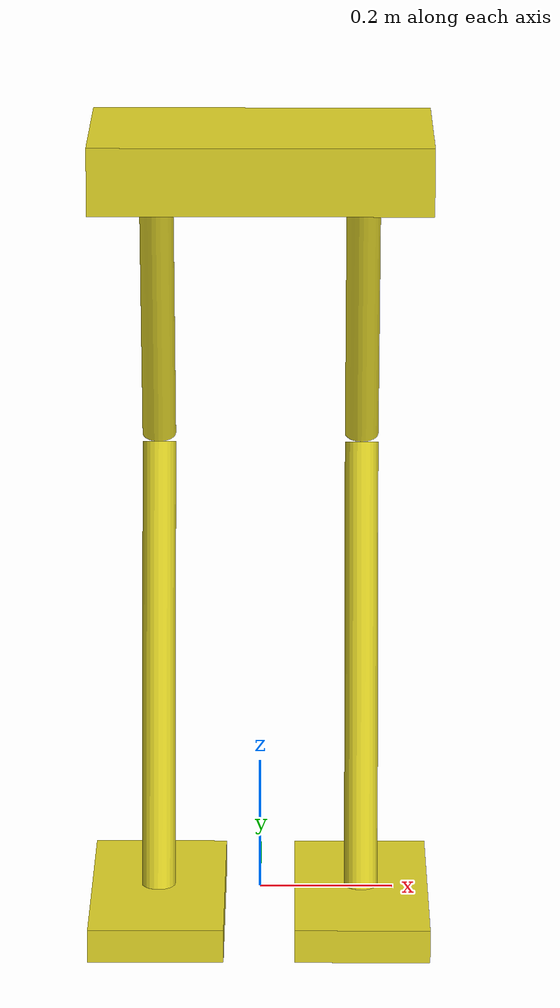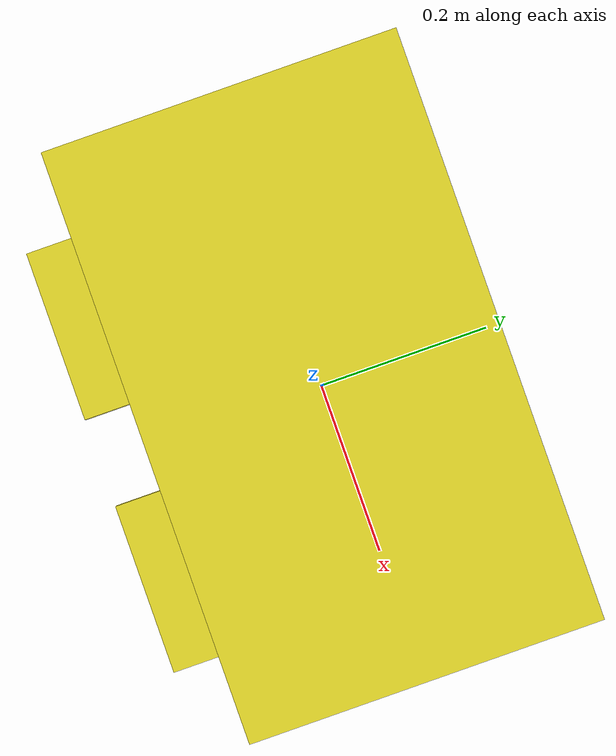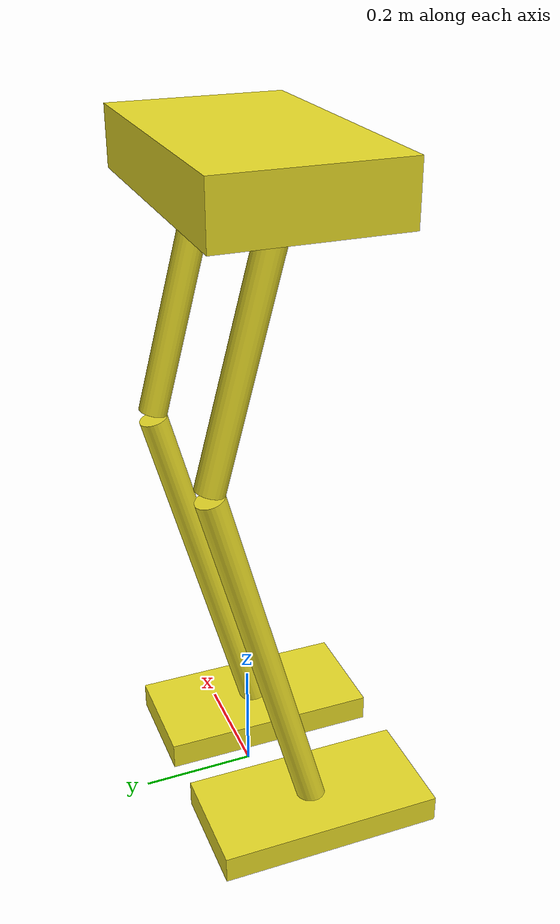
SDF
<?xml version='1.0'?>
<sdf version='1.6'>
  <model name='HumanoidRobot'>
    <link name='body'>
      <pose frame=''>0.001577 -0.016958 1.124584 0 -0 0</pose>
      <inertial>
        <mass>0.5</mass>
        <inertia>
          <ixx>0.166667</ixx>
          <ixy>0</ixy>
          <ixz>0</ixz>
          <iyy>0.166667</iyy>
          <iyz>0</iyz>
          <izz>0.166667</izz>
        </inertia>
        <pose frame=''>0 0 0 0 -0 0</pose>
      </inertial>
      <self_collide>0</self_collide>
      <kinematic>0</kinematic>
      <gravity>1</gravity>
      <visual name='visual'>
        <pose frame=''>0 0 0 0 -0 0</pose>
        <geometry>
          <box>
            <size>0.5 0.3 0.1</size>
          </box>
        </geometry>
        <material>
          <lighting>1</lighting>
          <script>
            <uri>file://media/materials/scripts/gazebo.material</uri>
            <name>Gazebo/Yellow</name>
          </script>
          <shader type='pixel'>
            <normal_map>__default__</normal_map>
          </shader>
          <ambient>0.3 0.3 0.3 1</ambient>
          <diffuse>0 1 0 1</diffuse>
          <specular>0.01 0.01 0.01 1</specular>
          <emissive>0 0 0 1</emissive>
        </material>
        <transparency>0</transparency>
        <cast_shadows>1</cast_shadows>
      </visual>
      <collision name='collision'>
        <laser_retro>0</laser_retro>
        <max_contacts>10</max_contacts>
        <pose frame=''>0 0 0 0 -0 0</pose>
        <geometry>
          <box>
            <size>0.5 0.3 0.1</size>
          </box>
        </geometry>
        <surface>
          <friction>
            <ode>
              <mu>1</mu>
              <mu2>1</mu2>
              <fdir1>0 0 0</fdir1>
              <slip1>0</slip1>
              <slip2>0</slip2>
            </ode>
            <torsional>
              <coefficient>1</coefficient>
              <patch_radius>0</patch_radius>
              <surface_radius>0</surface_radius>
              <use_patch_radius>1</use_patch_radius>
              <ode>
                <slip>0</slip>
              </ode>
            </torsional>
          </friction>
          <bounce>
            <restitution_coefficient>0</restitution_coefficient>
            <threshold>1e+06</threshold>
          </bounce>
          <contact>
            <collide_without_contact>0</collide_without_contact>
            <collide_without_contact_bitmask>1</collide_without_contact_bitmask>
            <collide_bitmask>1</collide_bitmask>
            <ode>
              <soft_cfm>0</soft_cfm>
              <soft_erp>0.2</soft_erp>
              <kp>1e+13</kp>
              <kd>1</kd>
              <max_vel>0.01</max_vel>
              <min_depth>0</min_depth>
            </ode>
            <bullet>
              <split_impulse>1</split_impulse>
              <split_impulse_penetration_threshold>-0.01</split_impulse_penetration_threshold>
              <soft_cfm>0</soft_cfm>
              <soft_erp>0.2</soft_erp>
              <kp>1e+13</kp>
              <kd>1</kd>
            </bullet>
          </contact>
        </surface>
      </collision>
    </link>
    <link name='upper_leg_left'>
      <pose frame=''>0.151973 0.05713 0.874934 0.2618 -0 0</pose>
      <inertial>
        <mass>1</mass>
        <inertia>
          <ixx>0.145833</ixx>
          <ixy>0</ixy>
          <ixz>0</ixz>
          <iyy>0.145833</iyy>
          <iyz>0</iyz>
          <izz>0.125</izz>
        </inertia>
        <pose frame=''>0 0 0 0 -0 0</pose>
      </inertial>
      <self_collide>0</self_collide>
      <kinematic>0</kinematic>
      <gravity>1</gravity>
      <visual name='visual'>
        <pose frame=''>0 0 0 0 -0 0</pose>
        <geometry>
          <cylinder>
            <radius>0.025</radius>
            <length>0.4</length>
          </cylinder>
        </geometry>
        <material>
          <lighting>1</lighting>
          <script>
            <uri>file://media/materials/scripts/gazebo.material</uri>
            <name>Gazebo/Yellow</name>
          </script>
          <shader type='pixel'>
            <normal_map>__default__</normal_map>
          </shader>
          <ambient>0.3 0.3 0.3 1</ambient>
          <diffuse>0 1 0 1</diffuse>
          <specular>0.01 0.01 0.01 1</specular>
          <emissive>0 0 0 1</emissive>
        </material>
        <transparency>0</transparency>
        <cast_shadows>1</cast_shadows>
      </visual>
      <collision name='collision'>
        <laser_retro>0</laser_retro>
        <max_contacts>10</max_contacts>
        <pose frame=''>0 0 0 0 -0 0</pose>
        <geometry>
          <cylinder>
            <radius>0.025</radius>
            <length>0.4</length>
          </cylinder>
        </geometry>
        <surface>
          <friction>
            <ode>
              <mu>1</mu>
              <mu2>1</mu2>
              <fdir1>0 0 0</fdir1>
              <slip1>0</slip1>
              <slip2>0</slip2>
            </ode>
            <torsional>
              <coefficient>1</coefficient>
              <patch_radius>0</patch_radius>
              <surface_radius>0</surface_radius>
              <use_patch_radius>1</use_patch_radius>
              <ode>
                <slip>0</slip>
              </ode>
            </torsional>
          </friction>
          <bounce>
            <restitution_coefficient>0</restitution_coefficient>
            <threshold>1e+06</threshold>
          </bounce>
          <contact>
            <collide_without_contact>0</collide_without_contact>
            <collide_without_contact_bitmask>1</collide_without_contact_bitmask>
            <collide_bitmask>1</collide_bitmask>
            <ode>
              <soft_cfm>0</soft_cfm>
              <soft_erp>0.2</soft_erp>
              <kp>1e+13</kp>
              <kd>1</kd>
              <max_vel>0.01</max_vel>
              <min_depth>0</min_depth>
            </ode>
            <bullet>
              <split_impulse>1</split_impulse>
              <split_impulse_penetration_threshold>-0.01</split_impulse_penetration_threshold>
              <soft_cfm>0</soft_cfm>
              <soft_erp>0.2</soft_erp>
              <kp>1e+13</kp>
              <kd>1</kd>
            </bullet>
          </contact>
        </surface>
      </collision>
    </link>
    <link name='upper_leg_right'>
      <pose frame=''>-0.152497 0.05713 0.874934 0.2618 -0 0</pose>
      <inertial>
        <mass>1</mass>
        <inertia>
          <ixx>0.145833</ixx>
          <ixy>0</ixy>
          <ixz>0</ixz>
          <iyy>0.145833</iyy>
          <iyz>0</iyz>
          <izz>0.125</izz>
        </inertia>
        <pose frame=''>0 0 0 0 -0 0</pose>
      </inertial>
      <self_collide>0</self_collide>
      <kinematic>0</kinematic>
      <gravity>1</gravity>
      <visual name='visual'>
        <pose frame=''>0 0 0 0 -0 0</pose>
        <geometry>
          <cylinder>
            <radius>0.025</radius>
            <length>0.4</length>
          </cylinder>
        </geometry>
        <material>
          <lighting>1</lighting>
          <script>
            <uri>file://media/materials/scripts/gazebo.material</uri>
            <name>Gazebo/Yellow</name>
          </script>
          <shader type='pixel'>
            <normal_map>__default__</normal_map>
          </shader>
          <ambient>0.3 0.3 0.3 1</ambient>
          <diffuse>0 1 0 1</diffuse>
          <specular>0.01 0.01 0.01 1</specular>
          <emissive>0 0 0 1</emissive>
        </material>
        <transparency>0</transparency>
        <cast_shadows>1</cast_shadows>
      </visual>
      <collision name='collision'>
        <laser_retro>0</laser_retro>
        <max_contacts>10</max_contacts>
        <pose frame=''>0 0 0 0 -0 0</pose>
        <geometry>
          <cylinder>
            <radius>0.025</radius>
            <length>0.4</length>
          </cylinder>
        </geometry>
        <surface>
          <friction>
            <ode>
              <mu>1</mu>
              <mu2>1</mu2>
              <fdir1>0 0 0</fdir1>
              <slip1>0</slip1>
              <slip2>0</slip2>
            </ode>
            <torsional>
              <coefficient>1</coefficient>
              <patch_radius>0</patch_radius>
              <surface_radius>0</surface_radius>
              <use_patch_radius>1</use_patch_radius>
              <ode>
                <slip>0</slip>
              </ode>
            </torsional>
          </friction>
          <bounce>
            <restitution_coefficient>0</restitution_coefficient>
            <threshold>1e+06</threshold>
          </bounce>
          <contact>
            <collide_without_contact>0</collide_without_contact>
            <collide_without_contact_bitmask>1</collide_without_contact_bitmask>
            <collide_bitmask>1</collide_bitmask>
            <ode>
              <soft_cfm>0</soft_cfm>
              <soft_erp>0.2</soft_erp>
              <kp>1e+13</kp>
              <kd>1</kd>
              <max_vel>0.01</max_vel>
              <min_depth>0</min_depth>
            </ode>
            <bullet>
              <split_impulse>1</split_impulse>
              <split_impulse_penetration_threshold>-0.01</split_impulse_penetration_threshold>
              <soft_cfm>0</soft_cfm>
              <soft_erp>0.2</soft_erp>
              <kp>1e+13</kp>
              <kd>1</kd>
            </bullet>
          </contact>
        </surface>
      </collision>
    </link>
    <link name='lower_leg_right'>
      <pose frame=''>-0.152497 0.018307 0.330734 -0.2618 0 0</pose>
      <inertial>
        <mass>1</mass>
        <inertia>
          <ixx>0.145833</ixx>
          <ixy>0</ixy>
          <ixz>0</ixz>
          <iyy>0.145833</iyy>
          <iyz>0</iyz>
          <izz>0.125</izz>
        </inertia>
        <pose frame=''>0 0 0 0 -0 0</pose>
      </inertial>
      <self_collide>0</self_collide>
      <kinematic>0</kinematic>
      <gravity>1</gravity>
      <visual name='visual'>
        <pose frame=''>0 0 0 0 -0 0</pose>
        <geometry>
          <cylinder>
            <radius>0.025</radius>
            <length>0.7</length>
          </cylinder>
        </geometry>
        <material>
          <lighting>1</lighting>
          <script>
            <uri>file://media/materials/scripts/gazebo.material</uri>
            <name>Gazebo/Yellow</name>
          </script>
          <shader type='pixel'>
            <normal_map>__default__</normal_map>
          </shader>
          <ambient>0.3 0.3 0.3 1</ambient>
          <diffuse>0 1 0 1</diffuse>
          <specular>0.01 0.01 0.01 1</specular>
          <emissive>0 0 0 1</emissive>
        </material>
        <transparency>0</transparency>
        <cast_shadows>1</cast_shadows>
      </visual>
      <collision name='collision'>
        <laser_retro>0</laser_retro>
        <max_contacts>10</max_contacts>
        <pose frame=''>0 0 0 0 -0 0</pose>
        <geometry>
          <cylinder>
            <radius>0.025</radius>
            <length>0.7</length>
          </cylinder>
        </geometry>
        <surface>
          <friction>
            <ode>
              <mu>1</mu>
              <mu2>1</mu2>
              <fdir1>0 0 0</fdir1>
              <slip1>0</slip1>
              <slip2>0</slip2>
            </ode>
            <torsional>
              <coefficient>1</coefficient>
              <patch_radius>0</patch_radius>
              <surface_radius>0</surface_radius>
              <use_patch_radius>1</use_patch_radius>
              <ode>
                <slip>0</slip>
              </ode>
            </torsional>
          </friction>
          <bounce>
            <restitution_coefficient>0</restitution_coefficient>
            <threshold>1e+06</threshold>
          </bounce>
          <contact>
            <collide_without_contact>0</collide_without_contact>
            <collide_without_contact_bitmask>1</collide_without_contact_bitmask>
            <collide_bitmask>1</collide_bitmask>
            <ode>
              <soft_cfm>0</soft_cfm>
              <soft_erp>0.2</soft_erp>
              <kp>1e+13</kp>
              <kd>1</kd>
              <max_vel>0.01</max_vel>
              <min_depth>0</min_depth>
            </ode>
            <bullet>
              <split_impulse>1</split_impulse>
              <split_impulse_penetration_threshold>-0.01</split_impulse_penetration_threshold>
              <soft_cfm>0</soft_cfm>
              <soft_erp>0.2</soft_erp>
              <kp>1e+13</kp>
              <kd>1</kd>
            </bullet>
          </contact>
        </surface>
      </collision>
    </link>
    <link name='lower_leg_left'>
      <pose frame=''>0.151973 0.018307 0.330734 -0.2618 0 0</pose>
      <inertial>
        <mass>1</mass>
        <inertia>
          <ixx>0.145833</ixx>
          <ixy>0</ixy>
          <ixz>0</ixz>
          <iyy>0.145833</iyy>
          <iyz>0</iyz>
          <izz>0.125</izz>
        </inertia>
        <pose frame=''>0 0 0 0 -0 0</pose>
      </inertial>
      <self_collide>0</self_collide>
      <kinematic>0</kinematic>
      <gravity>1</gravity>
      <visual name='visual'>
        <pose frame=''>0 0 0 0 -0 0</pose>
        <geometry>
          <cylinder>
            <radius>0.025</radius>
            <length>0.7</length>
          </cylinder>
        </geometry>
        <material>
          <lighting>1</lighting>
          <script>
            <uri>file://media/materials/scripts/gazebo.material</uri>
            <name>Gazebo/Yellow</name>
          </script>
          <shader type='pixel'>
            <normal_map>__default__</normal_map>
          </shader>
          <ambient>0.3 0.3 0.3 1</ambient>
          <diffuse>0 1 0 1</diffuse>
          <specular>0.01 0.01 0.01 1</specular>
          <emissive>0 0 0 1</emissive>
        </material>
        <transparency>0</transparency>
        <cast_shadows>1</cast_shadows>
      </visual>
      <collision name='collision'>
        <laser_retro>0</laser_retro>
        <max_contacts>10</max_contacts>
        <pose frame=''>0 0 0 0 -0 0</pose>
        <geometry>
          <cylinder>
            <radius>0.025</radius>
            <length>0.7</length>
          </cylinder>
        </geometry>
        <surface>
          <friction>
            <ode>
              <mu>1</mu>
              <mu2>1</mu2>
              <fdir1>0 0 0</fdir1>
              <slip1>0</slip1>
              <slip2>0</slip2>
            </ode>
            <torsional>
              <coefficient>1</coefficient>
              <patch_radius>0</patch_radius>
              <surface_radius>0</surface_radius>
              <use_patch_radius>1</use_patch_radius>
              <ode>
                <slip>0</slip>
              </ode>
            </torsional>
          </friction>
          <bounce>
            <restitution_coefficient>0</restitution_coefficient>
            <threshold>1e+06</threshold>
          </bounce>
          <contact>
            <collide_without_contact>0</collide_without_contact>
            <collide_without_contact_bitmask>1</collide_without_contact_bitmask>
            <collide_bitmask>1</collide_bitmask>
            <ode>
              <soft_cfm>0</soft_cfm>
              <soft_erp>0.2</soft_erp>
              <kp>1e+13</kp>
              <kd>1</kd>
              <max_vel>0.01</max_vel>
              <min_depth>0</min_depth>
            </ode>
            <bullet>
              <split_impulse>1</split_impulse>
              <split_impulse_penetration_threshold>-0.01</split_impulse_penetration_threshold>
              <soft_cfm>0</soft_cfm>
              <soft_erp>0.2</soft_erp>
              <kp>1e+13</kp>
              <kd>1</kd>
            </bullet>
          </contact>
        </surface>
      </collision>
    </link>
    <link name='foot_left'>
      <pose frame=''>0.151973 -0.066958 0 0 -0 0</pose>
      <inertial>
        <mass>1</mass>
        <inertia>
          <ixx>0.166667</ixx>
          <ixy>0</ixy>
          <ixz>0</ixz>
          <iyy>0.166667</iyy>
          <iyz>0</iyz>
          <izz>0.166667</izz>
        </inertia>
        <pose frame=''>0 0 0 0 -0 0</pose>
      </inertial>
      <self_collide>0</self_collide>
      <kinematic>0</kinematic>
      <visual name='visual'>
        <pose frame=''>0 0 0 0 -0 0</pose>
        <geometry>
          <box>
            <size>0.2 0.4 0.05</size>
          </box>
        </geometry>
        <material>
          <lighting>1</lighting>
          <script>
            <uri>file://media/materials/scripts/gazebo.material</uri>
            <name>Gazebo/Yellow</name>
          </script>
          <shader type='pixel'>
            <normal_map>__default__</normal_map>
          </shader>
          <ambient>0.3 0.3 0.3 1</ambient>
          <diffuse>0 1 0 1</diffuse>
          <specular>0.01 0.01 0.01 1</specular>
          <emissive>0 0 0 1</emissive>
        </material>
        <transparency>0</transparency>
        <cast_shadows>1</cast_shadows>
      </visual>
      <collision name='collision'>
        <laser_retro>0</laser_retro>
        <max_contacts>10</max_contacts>
        <pose frame=''>0 0 0 0 -0 0</pose>
        <geometry>
          <box>
            <size>0.2 0.4 0.05</size>
          </box>
        </geometry>
        <surface>
          <friction>
            <ode>
              <mu>1</mu>
              <mu2>1</mu2>
              <fdir1>0 0 0</fdir1>
              <slip1>0</slip1>
              <slip2>0</slip2>
            </ode>
            <torsional>
              <coefficient>1</coefficient>
              <patch_radius>0</patch_radius>
              <surface_radius>0</surface_radius>
              <use_patch_radius>1</use_patch_radius>
              <ode>
                <slip>0</slip>
              </ode>
            </torsional>
          </friction>
          <bounce>
            <restitution_coefficient>0</restitution_coefficient>
            <threshold>1e+06</threshold>
          </bounce>
          <contact>
            <collide_without_contact>0</collide_without_contact>
            <collide_without_contact_bitmask>1</collide_without_contact_bitmask>
            <collide_bitmask>1</collide_bitmask>
            <ode>
              <soft_cfm>0</soft_cfm>
              <soft_erp>0.2</soft_erp>
              <kp>1e+13</kp>
              <kd>1</kd>
              <max_vel>0.01</max_vel>
              <min_depth>0</min_depth>
            </ode>
            <bullet>
              <split_impulse>1</split_impulse>
              <split_impulse_penetration_threshold>-0.01</split_impulse_penetration_threshold>
              <soft_cfm>0</soft_cfm>
              <soft_erp>0.2</soft_erp>
              <kp>1e+13</kp>
              <kd>1</kd>
            </bullet>
          </contact>
        </surface>
      </collision>
    </link>
    <link name='foot_right'>
      <pose frame=''>-0.152497 -0.066958 0 0 -0 0</pose>
      <inertial>
        <mass>1</mass>
        <inertia>
          <ixx>0.166667</ixx>
          <ixy>0</ixy>
          <ixz>0</ixz>
          <iyy>0.166667</iyy>
          <iyz>0</iyz>
          <izz>0.166667</izz>
        </inertia>
        <pose frame=''>0 0 0 0 -0 0</pose>
      </inertial>
      <self_collide>0</self_collide>
      <kinematic>0</kinematic>
      <visual name='visual'>
        <pose frame=''>0 0 0 0 -0 0</pose>
        <geometry>
          <box>
            <size>0.2 0.4 0.05</size>
          </box>
        </geometry>
        <material>
          <lighting>1</lighting>
          <script>
            <uri>file://media/materials/scripts/gazebo.material</uri>
            <name>Gazebo/Yellow</name>
          </script>
          <shader type='pixel'>
            <normal_map>__default__</normal_map>
          </shader>
          <ambient>0.3 0.3 0.3 1</ambient>
          <diffuse>0 1 0 1</diffuse>
          <specular>0.01 0.01 0.01 1</specular>
          <emissive>0 0 0 1</emissive>
        </material>
        <transparency>0</transparency>
        <cast_shadows>1</cast_shadows>
      </visual>
      <collision name='collision'>
        <laser_retro>0</laser_retro>
        <max_contacts>10</max_contacts>
        <pose frame=''>0 0 0 0 -0 0</pose>
        <geometry>
          <box>
            <size>0.2 0.4 0.05</size>
          </box>
        </geometry>
        <surface>
          <friction>
            <ode>
              <mu>1</mu>
              <mu2>1</mu2>
              <fdir1>0 0 0</fdir1>
              <slip1>0</slip1>
              <slip2>0</slip2>
            </ode>
            <torsional>
              <coefficient>1</coefficient>
              <patch_radius>0</patch_radius>
              <surface_radius>0</surface_radius>
              <use_patch_radius>1</use_patch_radius>
              <ode>
                <slip>0</slip>
              </ode>
            </torsional>
          </friction>
          <bounce>
            <restitution_coefficient>0</restitution_coefficient>
            <threshold>1e+06</threshold>
          </bounce>
          <contact>
            <collide_without_contact>0</collide_without_contact>
            <collide_without_contact_bitmask>1</collide_without_contact_bitmask>
            <collide_bitmask>1</collide_bitmask>
            <ode>
              <soft_cfm>0</soft_cfm>
              <soft_erp>0.2</soft_erp>
              <kp>1e+13</kp>
              <kd>1</kd>
              <max_vel>0.01</max_vel>
              <min_depth>0</min_depth>
            </ode>
            <bullet>
              <split_impulse>1</split_impulse>
              <split_impulse_penetration_threshold>-0.01</split_impulse_penetration_threshold>
              <soft_cfm>0</soft_cfm>
              <soft_erp>0.2</soft_erp>
              <kp>1e+13</kp>
              <kd>1</kd>
            </bullet>
          </contact>
        </surface>
      </collision>
    </link>
    <joint name='body_to_upperLegRight_JOINT' type='revolute'>
      <parent>body</parent>
      <child>upper_leg_right</child>
      <pose frame=''>0 0 0 0 -0 0</pose>
      <axis>
        <xyz>0 0 1</xyz>
        <use_parent_model_frame>0</use_parent_model_frame>
        <limit>
          <lower>-1.79769e+308</lower>
          <upper>1.79769e+308</upper>
          <effort>-1</effort>
          <velocity>-1</velocity>
        </limit>
        <dynamics>
          <spring_reference>0</spring_reference>
          <spring_stiffness>0</spring_stiffness>
          <damping>10</damping>
        </dynamics>
      </axis>
      <physics>
        <ode>
          <limit>
            <cfm>0</cfm>
            <erp>0.2</erp>
          </limit>
          <suspension>
            <cfm>0</cfm>
            <erp>0.2</erp>
          </suspension>
        </ode>
      </physics>
    </joint>
    <joint name='body_to_upperLegLeft_JOINT' type='revolute'>
      <parent>body</parent>
      <child>upper_leg_left</child>
      <pose frame=''>0 0 0 0 -0 0</pose>
      <axis>
        <xyz>0 0 1</xyz>
        <use_parent_model_frame>0</use_parent_model_frame>
        <limit>
          <lower>-1.79769e+308</lower>
          <upper>1.79769e+308</upper>
          <effort>-1</effort>
          <velocity>-1</velocity>
        </limit>
        <dynamics>
          <spring_reference>0</spring_reference>
          <spring_stiffness>0</spring_stiffness>
          <damping>10</damping>
        </dynamics>
      </axis>
      <physics>
        <ode>
          <limit>
            <cfm>0</cfm>
            <erp>0.2</erp>
          </limit>
          <suspension>
            <cfm>0</cfm>
            <erp>0.2</erp>
          </suspension>
        </ode>
      </physics>
    </joint>
    <joint name='upperLegLeft_to_lowerLegLeft_JOINT' type='revolute'>
      <parent>upper_leg_left</parent>
      <child>lower_leg_left</child>
      <pose frame=''>0 0 0 0 -0 0</pose>
      <axis>
        <xyz>0 0 1</xyz>
        <use_parent_model_frame>0</use_parent_model_frame>
        <limit>
          <lower>-1.79769e+308</lower>
          <upper>1.79769e+308</upper>
          <effort>-1</effort>
          <velocity>-1</velocity>
        </limit>
        <dynamics>
          <spring_reference>0</spring_reference>
          <spring_stiffness>0</spring_stiffness>
          <damping>10</damping>
        </dynamics>
      </axis>
      <physics>
        <ode>
          <limit>
            <cfm>0</cfm>
            <erp>0.2</erp>
          </limit>
          <suspension>
            <cfm>0</cfm>
            <erp>0.2</erp>
          </suspension>
        </ode>
      </physics>
    </joint>
    <joint name='upperLegRight_to_lowerLegRight_JOINT' type='revolute'>
      <parent>upper_leg_right</parent>
      <child>lower_leg_right</child>
      <pose frame=''>0 0 0 0 -0 0</pose>
      <axis>
        <xyz>0 0 1</xyz>
        <use_parent_model_frame>0</use_parent_model_frame>
        <limit>
          <lower>-1.79769e+308</lower>
          <upper>1.79769e+308</upper>
          <effort>-1</effort>
          <velocity>-1</velocity>
        </limit>
        <dynamics>
          <spring_reference>0</spring_reference>
          <spring_stiffness>0</spring_stiffness>
          <damping>10</damping>
        </dynamics>
      </axis>
      <physics>
        <ode>
          <limit>
            <cfm>0</cfm>
            <erp>0.2</erp>
          </limit>
          <suspension>
            <cfm>0</cfm>
            <erp>0.2</erp>
          </suspension>
        </ode>
      </physics>
    </joint>
    <joint name='lowerLegRight_to_footRight_JOINT' type='revolute'>
      <parent>lower_leg_right</parent>
      <child>foot_right</child>
      <pose frame=''>0 0 0 0 -0 0</pose>
      <axis>
        <xyz>0 0 1</xyz>
        <use_parent_model_frame>0</use_parent_model_frame>
        <limit>
          <lower>-1.79769e+308</lower>
          <upper>1.79769e+308</upper>
          <effort>-1</effort>
          <velocity>-1</velocity>
        </limit>
        <dynamics>
          <spring_reference>0</spring_reference>
          <spring_stiffness>0</spring_stiffness>
          <damping>10</damping>
        </dynamics>
      </axis>
      <physics>
        <ode>
          <limit>
            <cfm>0</cfm>
            <erp>0.2</erp>
          </limit>
          <suspension>
            <cfm>0</cfm>
            <erp>0.2</erp>
          </suspension>
        </ode>
      </physics>
    </joint>
    <joint name='lowerLegLeft_to_footLeft_JOINT' type='revolute'>
      <parent>lower_leg_left</parent>
      <child>foot_left</child>
      <pose frame=''>0 0 0 0 -0 0</pose>
      <axis>
        <xyz>0 0 1</xyz>
        <use_parent_model_frame>0</use_parent_model_frame>
        <limit>
          <lower>-1.79769e+308</lower>
          <upper>1.79769e+308</upper>
          <effort>-1</effort>
          <velocity>-1</velocity>
        </limit>
        <dynamics>
          <spring_reference>0</spring_reference>
          <spring_stiffness>0</spring_stiffness>
          <damping>10</damping>
        </dynamics>
      </axis>
      <physics>
        <ode>
          <limit>
            <cfm>0</cfm>
            <erp>0.2</erp>
          </limit>
          <suspension>
            <cfm>0</cfm>
            <erp>0.2</erp>
          </suspension>
        </ode>
      </physics>
    </joint>
    <static>0</static>
    <allow_auto_disable>1</allow_auto_disable>
  </model>
</sdf>
